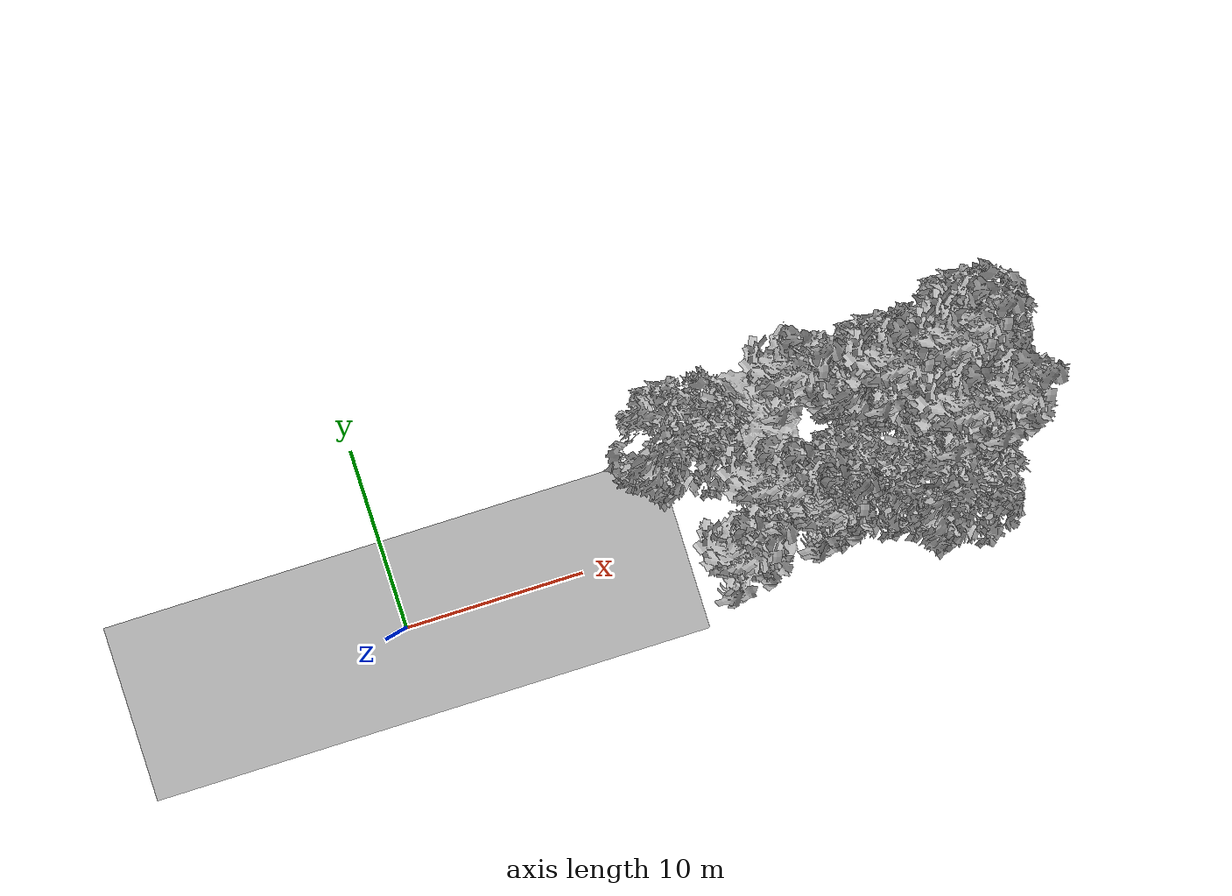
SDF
<sdf version="1.7">
 <world name="default">
  <model name="ground_plane">
   <static>1</static>
   <link name="link">
    <collision name="collision">
     <pose>-50 0 0 0 -0 0</pose>
     <geometry><plane><normal>0 0 1</normal><size>100 100</size></plane></geometry>
     <surface><contact><ode><min_depth>0.01</min_depth><max_vel>0</max_vel></ode></contact></surface>
    </collision>
    <visual name="grass">
     <cast_shadows>0</cast_shadows>
     <geometry>
      <mesh>
       <scale>0.5814285714285714 0.18142857142857144 0.1</scale>
       <uri>file://grass_plane/meshes/grass_plane.dae</uri>
      </mesh>
     </geometry>
    </visual>
   </link>
  </model>
  <model name="Tree 44">
   <static>1</static>
   <pose>26.35108753602954 5.392423605283948 0 1.57079 -0 0</pose>
   <link name="link">
    <collision name="collision">
     <geometry><mesh><scale>3.5 5 3.5</scale><uri>model://tree_9/meshes/tree_9.obj</uri></mesh></geometry>
    </collision>
    <visual name="visual">
     <geometry><mesh><scale>3.5 5 3.5</scale><uri>model://tree_9/meshes/tree_9.obj</uri></mesh></geometry>
    </visual>
   </link>
  </model>
  <model name="Tree 62">
   <static>1</static>
   <pose>31.328670580155745 -0.057077240737232415 0 1.57079 -0 0</pose>
   <link name="link">
    <collision name="collision">
     <geometry><mesh><scale>4 2.5 4</scale><uri>model://tree_1/meshes/tree_1.obj</uri></mesh></geometry>
    </collision>
    <visual name="visual">
     <geometry><mesh><scale>4 2.5 4</scale><uri>model://tree_1/meshes/tree_1.obj</uri></mesh></geometry>
    </visual>
   </link>
  </model>
  <model name="Tree 108">
   <static>1</static>
   <pose>30.277864120967294 6.086515128433781 0 1.57079 -0 0</pose>
   <link name="link">
    <collision name="collision">
     <geometry><mesh><scale>3.5 5 3.5</scale><uri>model://tree_9/meshes/tree_9.obj</uri></mesh></geometry>
    </collision>
    <visual name="visual">
     <geometry><mesh><scale>3.5 5 3.5</scale><uri>model://tree_9/meshes/tree_9.obj</uri></mesh></geometry>
    </visual>
   </link>
  </model>
  <model name="Tree 143">
   <static>1</static>
   <pose>21.64250057027577 0.06627400973468767 0 1.57079 -0 0</pose>
   <link name="link">
    <collision name="collision">
     <geometry><mesh><scale>3.5 5 3.5</scale><uri>model://tree_9/meshes/tree_9.obj</uri></mesh></geometry>
    </collision>
    <visual name="visual">
     <geometry><mesh><scale>3.5 5 3.5</scale><uri>model://tree_9/meshes/tree_9.obj</uri></mesh></geometry>
    </visual>
   </link>
  </model>
  <model name="Tree 147">
   <static>1</static>
   <pose>31.16317922724157 2.4712721283860617 0 1.57079 -0 0</pose>
   <link name="link">
    <collision name="collision">
     <geometry><mesh><scale>3.5 5 3.5</scale><uri>model://tree_9/meshes/tree_9.obj</uri></mesh></geometry>
    </collision>
    <visual name="visual">
     <geometry><mesh><scale>3.5 5 3.5</scale><uri>model://tree_9/meshes/tree_9.obj</uri></mesh></geometry>
    </visual>
   </link>
  </model>
  <model name="Tree 168">
   <static>1</static>
   <pose>21.583803446730258 0.269975277143784 0 1.57079 -0 0</pose>
   <link name="link">
    <collision name="collision">
     <geometry><mesh><scale>3.5 5 3.5</scale><uri>model://tree_9/meshes/tree_9.obj</uri></mesh></geometry>
    </collision>
    <visual name="visual">
     <geometry><mesh><scale>3.5 5 3.5</scale><uri>model://tree_9/meshes/tree_9.obj</uri></mesh></geometry>
    </visual>
   </link>
  </model>
  <model name="Tree 216">
   <static>1</static>
   <pose>20.353955060225218 1.6248554909054 0 1.57079 -0 0</pose>
   <link name="link">
    <collision name="collision">
     <geometry><mesh><scale>3.5 5 3.5</scale><uri>model://tree_9/meshes/tree_9.obj</uri></mesh></geometry>
    </collision>
    <visual name="visual">
     <geometry><mesh><scale>3.5 5 3.5</scale><uri>model://tree_9/meshes/tree_9.obj</uri></mesh></geometry>
    </visual>
   </link>
  </model>
  <model name="Tree 223">
   <static>1</static>
   <pose>19.296138869786333 2.08090156578519 0 1.57079 -0 0</pose>
   <link name="link">
    <collision name="collision">
     <geometry><mesh><scale>3.5 5 3.5</scale><uri>model://tree_9/meshes/tree_9.obj</uri></mesh></geometry>
    </collision>
    <visual name="visual">
     <geometry><mesh><scale>3.5 5 3.5</scale><uri>model://tree_9/meshes/tree_9.obj</uri></mesh></geometry>
    </visual>
   </link>
  </model>
  <model name="Tree 277">
   <static>1</static>
   <pose>19.403771449345953 -1.0946108502796843 0 1.57079 -0 0</pose>
   <link name="link">
    <collision name="collision">
     <geometry><mesh><scale>3 2 3</scale><uri>model://tree_3/meshes/tree_3.obj</uri></mesh></geometry>
    </collision>
    <visual name="visual">
     <geometry><mesh><scale>3 2 3</scale><uri>model://tree_3/meshes/tree_3.obj</uri></mesh></geometry>
    </visual>
   </link>
  </model>
  <model name="Tree 280">
   <static>1</static>
   <pose>31.508549415862134 6.040854850731876 0 1.57079 -0 0</pose>
   <link name="link">
    <collision name="collision">
     <geometry><mesh><scale>3.5 5 3.5</scale><uri>model://tree_2/meshes/tree_2.obj</uri></mesh></geometry>
    </collision>
    <visual name="visual">
     <geometry><mesh><scale>3.5 5 3.5</scale><uri>model://tree_2/meshes/tree_2.obj</uri></mesh></geometry>
    </visual>
   </link>
  </model>
  <model name="Tree 303">
   <static>1</static>
   <pose>30.985564400413992 2.851506643059924 0 1.57079 -0 0</pose>
   <link name="link">
    <collision name="collision">
     <geometry><mesh><scale>3.5 5 3.5</scale><uri>model://tree_2/meshes/tree_2.obj</uri></mesh></geometry>
    </collision>
    <visual name="visual">
     <geometry><mesh><scale>3.5 5 3.5</scale><uri>model://tree_2/meshes/tree_2.obj</uri></mesh></geometry>
    </visual>
   </link>
  </model>
  <model name="Tree 323">
   <static>1</static>
   <pose>27.550918361078686 4.708011099605027 0 1.57079 -0 0</pose>
   <link name="link">
    <collision name="collision">
     <geometry><mesh><scale>3 2 3</scale><uri>model://tree_3/meshes/tree_3.obj</uri></mesh></geometry>
    </collision>
    <visual name="visual">
     <geometry><mesh><scale>3 2 3</scale><uri>model://tree_3/meshes/tree_3.obj</uri></mesh></geometry>
    </visual>
   </link>
  </model>
  <model name="Tree 339">
   <static>1</static>
   <pose>17.28504001062707 -0.7648452797475027 0 1.57079 -0 0</pose>
   <link name="link">
    <collision name="collision">
     <geometry><mesh><scale>3.5 5 3.5</scale><uri>model://tree_9/meshes/tree_9.obj</uri></mesh></geometry>
    </collision>
    <visual name="visual">
     <geometry><mesh><scale>3.5 5 3.5</scale><uri>model://tree_9/meshes/tree_9.obj</uri></mesh></geometry>
    </visual>
   </link>
  </model>
  <model name="Tree 359">
   <static>1</static>
   <pose>28.892926386556297 2.5165801601552644 0 1.57079 -0 0</pose>
   <link name="link">
    <collision name="collision">
     <geometry><mesh><scale>3.5 5 3.5</scale><uri>model://tree_9/meshes/tree_9.obj</uri></mesh></geometry>
    </collision>
    <visual name="visual">
     <geometry><mesh><scale>3.5 5 3.5</scale><uri>model://tree_9/meshes/tree_9.obj</uri></mesh></geometry>
    </visual>
   </link>
  </model>
  <model name="Tree 376">
   <static>1</static>
   <pose>28.824426072399604 -1.175848805658564 0 1.57079 -0 0</pose>
   <link name="link">
    <collision name="collision">
     <geometry><mesh><scale>3.5 5 3.5</scale><uri>model://tree_2/meshes/tree_2.obj</uri></mesh></geometry>
    </collision>
    <visual name="visual">
     <geometry><mesh><scale>3.5 5 3.5</scale><uri>model://tree_2/meshes/tree_2.obj</uri></mesh></geometry>
    </visual>
   </link>
  </model>
  <model name="Tree 386">
   <static>1</static>
   <pose>24.321146834906116 0.528587639605604 0 1.57079 -0 0</pose>
   <link name="link">
    <collision name="collision">
     <geometry><mesh><scale>3.5 5 3.5</scale><uri>model://tree_2/meshes/tree_2.obj</uri></mesh></geometry>
    </collision>
    <visual name="visual">
     <geometry><mesh><scale>3.5 5 3.5</scale><uri>model://tree_2/meshes/tree_2.obj</uri></mesh></geometry>
    </visual>
   </link>
  </model>
  <model name="Tree 389">
   <static>1</static>
   <pose>19.815941908502737 5.883783486348246 0 1.57079 -0 0</pose>
   <link name="link">
    <collision name="collision">
     <geometry><mesh><scale>3 2 3</scale><uri>model://tree_3/meshes/tree_3.obj</uri></mesh></geometry>
    </collision>
    <visual name="visual">
     <geometry><mesh><scale>3 2 3</scale><uri>model://tree_3/meshes/tree_3.obj</uri></mesh></geometry>
    </visual>
   </link>
  </model>
  <model name="Tree 392">
   <static>1</static>
   <pose>21.74167993214209 6.507262145452756 0 1.57079 -0 0</pose>
   <link name="link">
    <collision name="collision">
     <geometry><mesh><scale>3.5 5 3.5</scale><uri>model://tree_9/meshes/tree_9.obj</uri></mesh></geometry>
    </collision>
    <visual name="visual">
     <geometry><mesh><scale>3.5 5 3.5</scale><uri>model://tree_9/meshes/tree_9.obj</uri></mesh></geometry>
    </visual>
   </link>
  </model>
  <model name="Tree 394">
   <static>1</static>
   <pose>16.549872285609197 5.133069207804752 0 1.57079 -0 0</pose>
   <link name="link">
    <collision name="collision">
     <geometry><mesh><scale>3.5 5 3.5</scale><uri>model://tree_2/meshes/tree_2.obj</uri></mesh></geometry>
    </collision>
    <visual name="visual">
     <geometry><mesh><scale>3.5 5 3.5</scale><uri>model://tree_2/meshes/tree_2.obj</uri></mesh></geometry>
    </visual>
   </link>
  </model>
  <model name="Tree 395">
   <static>1</static>
   <pose>26.95160661823364 5.209743373522244 0 1.57079 -0 0</pose>
   <link name="link">
    <collision name="collision">
     <geometry><mesh><scale>3.5 5 3.5</scale><uri>model://tree_2/meshes/tree_2.obj</uri></mesh></geometry>
    </collision>
    <visual name="visual">
     <geometry><mesh><scale>3.5 5 3.5</scale><uri>model://tree_2/meshes/tree_2.obj</uri></mesh></geometry>
    </visual>
   </link>
  </model>
  <model name="Tree 433">
   <static>1</static>
   <pose>29.325707287316774 5.5130956705279495 0 1.57079 -0 0</pose>
   <link name="link">
    <collision name="collision">
     <geometry><mesh><scale>3.5 5 3.5</scale><uri>model://tree_9/meshes/tree_9.obj</uri></mesh></geometry>
    </collision>
    <visual name="visual">
     <geometry><mesh><scale>3.5 5 3.5</scale><uri>model://tree_9/meshes/tree_9.obj</uri></mesh></geometry>
    </visual>
   </link>
  </model>
  <model name="Tree 468">
   <static>1</static>
   <pose>21.574046017236725 4.9402288093598195 0 1.57079 -0 0</pose>
   <link name="link">
    <collision name="collision">
     <geometry><mesh><scale>4 2.5 4</scale><uri>model://tree_1/meshes/tree_1.obj</uri></mesh></geometry>
    </collision>
    <visual name="visual">
     <geometry><mesh><scale>4 2.5 4</scale><uri>model://tree_1/meshes/tree_1.obj</uri></mesh></geometry>
    </visual>
   </link>
  </model>
  <model name="Tree 486">
   <static>1</static>
   <pose>26.017768784268043 5.50205908884729 0 1.57079 -0 0</pose>
   <link name="link">
    <collision name="collision">
     <geometry><mesh><scale>4 2.5 4</scale><uri>model://tree_1/meshes/tree_1.obj</uri></mesh></geometry>
    </collision>
    <visual name="visual">
     <geometry><mesh><scale>4 2.5 4</scale><uri>model://tree_1/meshes/tree_1.obj</uri></mesh></geometry>
    </visual>
   </link>
  </model>
 </world>
</sdf>
